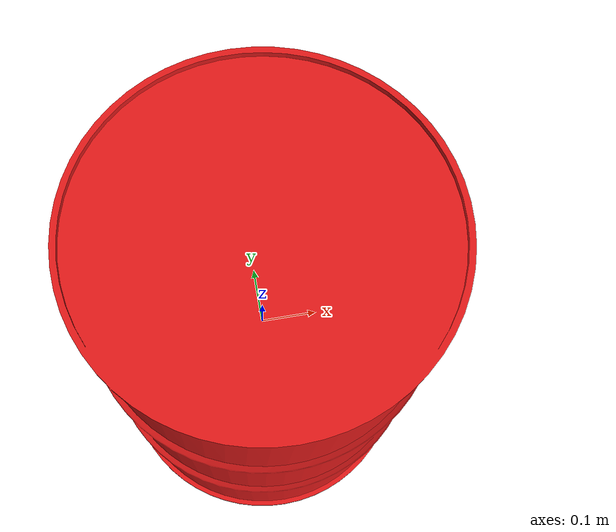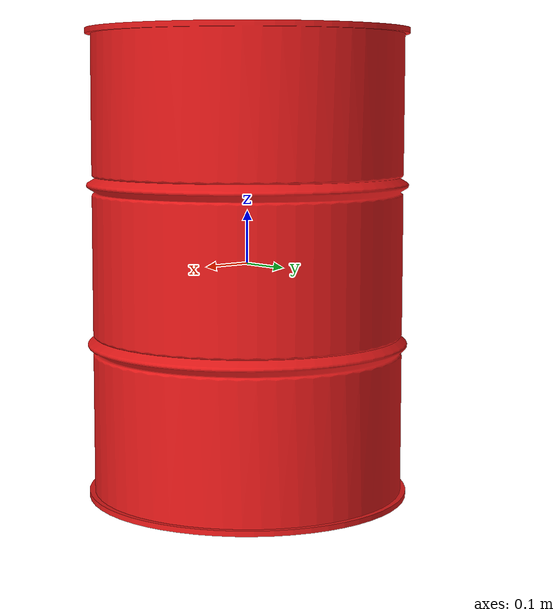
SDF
<?xml version="1.0" ?>
<!-- Copyright (c) TODO
Based on https://github.com/uuvsimulator/uuv_simulator/tree/master/uuv_gazebo_worlds
-->
<sdf version="1.5">
  <model name="oil_drum">
    <static>true</static>

    <link name="link">
      <collision name="collision">
        <pose>0 0 0 0 0 0</pose>
        <geometry>
          <mesh>
            <uri>model://objects/oil_drum/model.dae</uri>
            <scale>1.0 1.0 1.0</scale>
          </mesh>
        </geometry>
      </collision>

      <visual name="visual">
        <cast_shadows>true</cast_shadows>
        <pose>0 0 0 0 0 0</pose>
        <geometry>
          <mesh>
            <uri>model://objects/oil_drum/model.dae</uri>
            <scale>1.0 1.0 1.0</scale>
          </mesh>
        </geometry>
      </visual>
    </link>

  </model>
</sdf>
